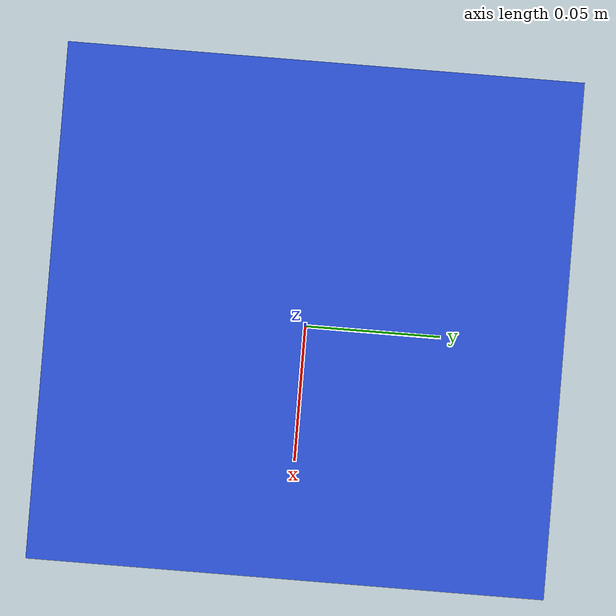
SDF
<?xml version="1.0"?>
<sdf version="1.7">
  <model name="sorting_bin">
    <static>true</static>
    <link name="bin_link">
      <visual name="base_visual">
        <pose>0 0 0.05 0 0 0</pose>
        <geometry>
          <box>
            <size>0.18 0.18 0.10</size>
          </box>
        </geometry>
        <material>
          <ambient>0.15 0.3 0.8 1</ambient>
          <diffuse>0.15 0.3 0.8 1</diffuse>
        </material>
      </visual>
    </link>
  </model>
</sdf>
